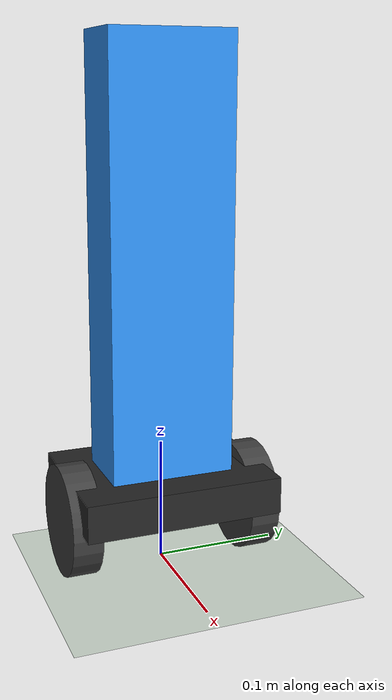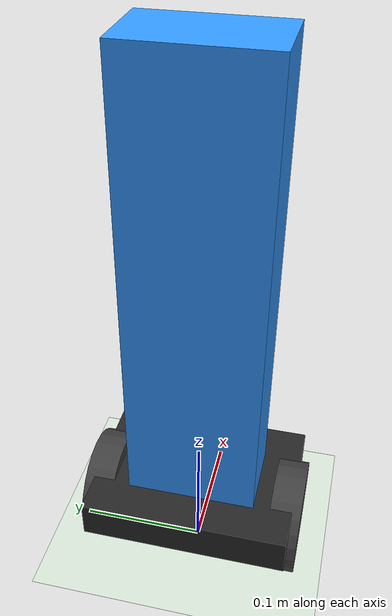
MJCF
<?xml version="1.0" encoding="utf-8"?>
<mujoco model="segway_from_scratch">

  <compiler angle="degree"/>
  <option timestep="0.001" integrator="RK4" gravity="0 0 -9.81"/>

  <default>
    <geom solref="0.02 2" solimp="0.9 0.95 0.001 0.5 2" margin="0.001"/>
    <joint damping="0.01"/>
  </default>

  <worldbody>
    <light name="sun" pos="0 0 3" dir="0 0 -1" directional="true"/>

    <geom name="floor" type="plane" size="20 20 0.1"
          rgba="0.85 0.9 0.85 1"
          friction="1.2 0.01 0.0002"/>

    <body name="chassis" pos="0 0 0.045">
      <joint name="chassis_x" type="slide" axis="1 0 0" damping="0.02"/>

      <geom name="chassis_geom" type="box"
            size="0.06 0.08 0.015"
            pos="0 0 0.02"
            rgba="0.15 0.15 0.15 1"/>
      <inertial pos="0 0 0.02" mass="0.35" diaginertia="0.0012 0.0016 0.0010"/>

      <body name="left_wheel" pos="0 0.075 0">
        <joint name="left_wheel_hinge" type="hinge" axis="0 1 0" damping="0.002"/>
        <geom name="left_wheel_geom" type="cylinder"
              size="0.045 0.012"
              euler="90 0 0"
              rgba="0.25 0.25 0.25 1"
              friction="1.2 0.01 0.0002"/>
        <inertial pos="0 0 0" mass="0.20" diaginertia="0.00018 0.00010 0.00010"/>
      </body>

      <body name="right_wheel" pos="0 -0.075 0">
        <joint name="right_wheel_hinge" type="hinge" axis="0 1 0" damping="0.002"/>
        <geom name="right_wheel_geom" type="cylinder"
              size="0.045 0.012"
              euler="90 0 0"
              rgba="0.25 0.25 0.25 1"
              friction="1.2 0.01 0.0002"/>
        <inertial pos="0 0 0" mass="0.20" diaginertia="0.00018 0.00010 0.00010"/>
      </body>

      <body name="torso" pos="0 0 0.02">
        <joint name="torso_pitch" type="hinge" axis="0 1 0" damping="0.01"/>

        <geom name="torso_geom" type="box"
              size="0.03 0.05 0.18"
              pos="0 0 0.18"
              rgba="0.2 0.6 1 1"/>
        <inertial pos="0 0 0.18" mass="0.9" diaginertia="0.006 0.006 0.0015"/>

        <site name="imu" pos="0 0 0.18" size="0.006"/>
      </body>

    </body>
  </worldbody>

  <actuator>
    <motor name="left_motor"  joint="left_wheel_hinge"  gear="1" ctrllimited="true" ctrlrange="-2.5 2.5"/>
    <motor name="right_motor" joint="right_wheel_hinge" gear="1" ctrllimited="true" ctrlrange="-2.5 2.5"/>
  </actuator>

  <sensor>
    <gyro name="gyro" site="imu"/>
    <accelerometer name="acc" site="imu"/>
  </sensor>

</mujoco>
